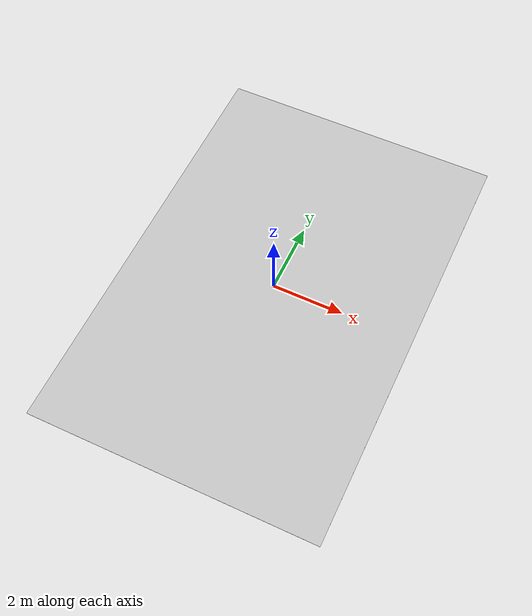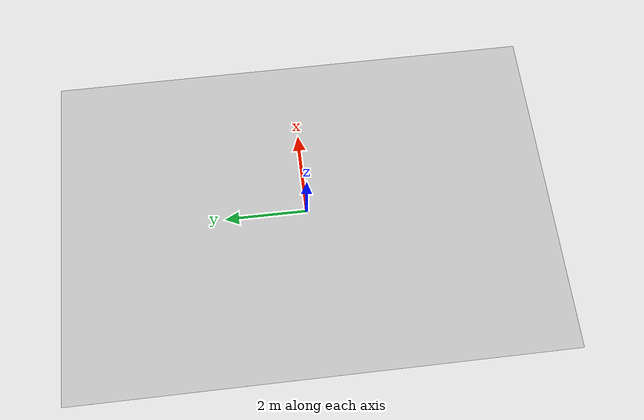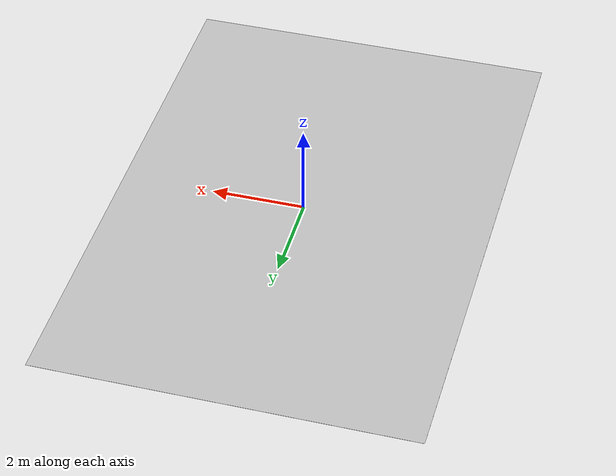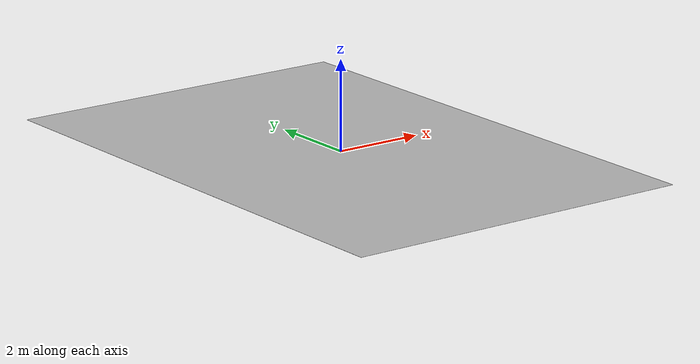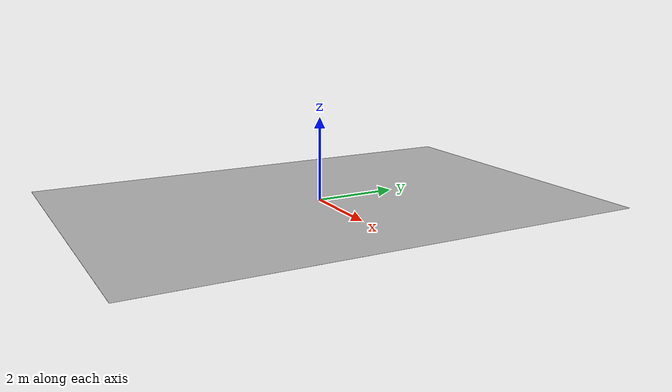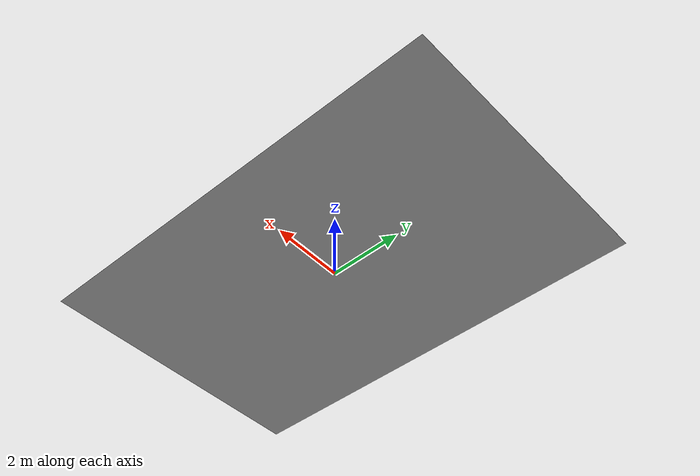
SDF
<?xml version='1.0'?>
<sdf version='1.10'>
  <model name='tmr_track'>
    <link name='link'>
        <visual name='visual'>
          <geometry>
            <mesh>
              <uri>model://tmr_track/meshes/automodelcar_tmr.obj</uri>
            </mesh>
          </geometry>
          <transparency>0</transparency>
          <cast_shadows>1</cast_shadows>
        </visual>
        <collision name='collision'>
          <geometry>
            <mesh>
              <uri>model://tmr_track/meshes/automodelcar_tmr.obj</uri>
            </mesh>
          </geometry>
        </collision>
        <pose>0 0 0 0 0 0</pose>
        <inertial>
          <pose>0 0 0 0 0 0</pose>
          <mass>1</mass>
          <inertia>
            <ixx>1</ixx>
            <ixy>0</ixy>
            <ixz>0</ixz>
            <iyy>1</iyy>
            <iyz>0</iyz>
            <izz>1</izz>
          </inertia>
        </inertial>
        <pose>0 0 0 0 0 0</pose>
        <enable_wind>false</enable_wind>
    </link>
    <static>false</static>
    <self_collide>false</self_collide>
  </model>
</sdf>
